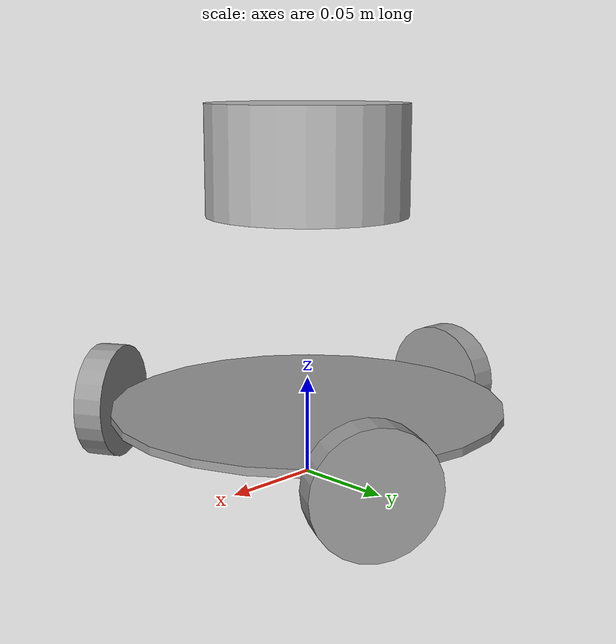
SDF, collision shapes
<?xml version='1.0'?>
<sdf version='1.6'>
  <model name='triton_lidar'>
    <link name='lidar'>
      <inertial>
        <pose frame=''>0 0 0.161 0 -0 0</pose>
        <inertia>
          <ixx>0.001</ixx>
          <ixy>0</ixy>
          <ixz>0</ixz>
          <iyy>0.001</iyy>
          <iyz>0</iyz>
          <izz>0.001</izz>
        </inertia>
        <mass>0.125</mass>
      </inertial>
      <sensor name='hls_lfcd_lds' type='ray'>
        <always_on>1</always_on>
        <visualize>0</visualize>
        <pose frame=''>0 0 0.171 0 -0 0</pose>
        <update_rate>1800</update_rate>
        <ray>
          <scan>
            <horizontal>
              <samples>360</samples>
              <resolution>1</resolution>
              <min_angle>0</min_angle>
              <max_angle>6.28</max_angle>
            </horizontal>
            <vertical>
              <samples>1</samples>
              <min_angle>0</min_angle>
              <max_angle>0</max_angle>
            </vertical>
          </scan>
          <range>
            <min>0.12</min>
            <max>3.5</max>
            <resolution>0.015</resolution>
          </range>
          <noise>
            <type>gaussian</type>
            <mean>0</mean>
            <stddev>0.01</stddev>
          </noise>
        </ray>
        <plugin name='gazebo_ros_head_hokuyo_controller' filename='libgazebo_ros_laser.so'>
          <topicName>/scan</topicName>
        </plugin>
      </sensor>
      <self_collide>0</self_collide>
      <enable_wind>0</enable_wind>
      <kinematic>0</kinematic>
      <pose frame=''>0 0 0 0 -0 0</pose>
      <visual name='lidar_sensor_visual'>
        <pose frame=''>0 0 0.161 0 -0 0</pose>
        <geometry>
          <cylinder>
            <radius>0.0508</radius>
            <length>0.055</length>
          </cylinder>
        </geometry>
        <material>
          <shader type='pixel'/>
          <emissive>0 0 0 1</emissive>
        </material>
        <transparency>0</transparency>
        <cast_shadows>1</cast_shadows>
      </visual>
      <collision name='lidar_sensor_collision'>
        <laser_retro>0</laser_retro>
        <max_contacts>10</max_contacts>
        <pose frame=''>0 0 0.161 0 -0 0</pose>
        <geometry>
          <cylinder>
            <radius>0.0508</radius>
            <length>0.055</length>
          </cylinder>
        </geometry>
        <surface>
          <friction>
            <ode>
              <mu>1</mu>
              <mu2>1</mu2>
              <fdir1>0 0 0</fdir1>
              <slip1>0</slip1>
              <slip2>0</slip2>
            </ode>
            <torsional>
              <coefficient>1</coefficient>
              <patch_radius>0</patch_radius>
              <surface_radius>0</surface_radius>
              <use_patch_radius>1</use_patch_radius>
              <ode>
                <slip>0</slip>
              </ode>
            </torsional>
          </friction>
          <bounce>
            <restitution_coefficient>0</restitution_coefficient>
            <threshold>1e+06</threshold>
          </bounce>
          <contact>
            <collide_without_contact>0</collide_without_contact>
            <collide_without_contact_bitmask>1</collide_without_contact_bitmask>
            <collide_bitmask>1</collide_bitmask>
            <ode>
              <soft_cfm>0</soft_cfm>
              <soft_erp>0.2</soft_erp>
              <kp>1e+13</kp>
              <kd>1</kd>
              <max_vel>0.01</max_vel>
              <min_depth>0</min_depth>
            </ode>
            <bullet>
              <split_impulse>1</split_impulse>
              <split_impulse_penetration_threshold>-0.01</split_impulse_penetration_threshold>
              <soft_cfm>0</soft_cfm>
              <soft_erp>0.2</soft_erp>
              <kp>1e+13</kp>
              <kd>1</kd>
            </bullet>
          </contact>
        </surface>
      </collision>
    </link>
    <link name='link_1'>
      <inertial>
        <mass>1</mass>
        <inertia>
          <ixx>0.145833</ixx>
          <ixy>0</ixy>
          <ixz>0</ixz>
          <iyy>0.145833</iyy>
          <iyz>0</iyz>
          <izz>0.125</izz>
        </inertia>
        <pose frame=''>0 0 0 0 -0 0</pose>
      </inertial>
      <pose frame=''>0 0 0.035 0 -0 0</pose>
      <gravity>1</gravity>
      <self_collide>0</self_collide>
      <kinematic>0</kinematic>
      <enable_wind>0</enable_wind>
      <visual name='visual'>
        <pose frame=''>0 0 0 0 -0 0</pose>
        <geometry>
          <mesh>
            <uri>model://triton/meshes/triton.dae</uri>
          </mesh>
        </geometry>
        <material>
          <lighting>1</lighting>
          <script>
            <uri>file://media/materials/scripts/gazebo.material</uri>
            <name>Gazebo/Grey</name>
          </script>
          <shader type='pixel'>
            <normal_map>__default__</normal_map>
          </shader>
          <ambient>0.4 0.4 0.4 1</ambient>
          <diffuse>1 1 1 1</diffuse>
          <specular>0.01 0.01 0.01 1</specular>
          <emissive>0 0 0 1</emissive>
        </material>
        <transparency>0</transparency>
        <cast_shadows>1</cast_shadows>
      </visual>
      <collision name='collision'>
        <laser_retro>0</laser_retro>
        <max_contacts>10</max_contacts>
        <pose frame=''>0 0 0 0 -0 0</pose>
        <geometry>
          <cylinder>
            <radius>0.1</radius>
            <length>0.004</length>
          </cylinder>
        </geometry>
        <surface>
          <friction>
            <ode>
              <mu>1</mu>
              <mu2>1</mu2>
              <fdir1>0 0 0</fdir1>
              <slip1>0</slip1>
              <slip2>0</slip2>
            </ode>
            <torsional>
              <coefficient>1</coefficient>
              <patch_radius>0</patch_radius>
              <surface_radius>0</surface_radius>
              <use_patch_radius>1</use_patch_radius>
              <ode>
                <slip>0</slip>
              </ode>
            </torsional>
          </friction>
          <bounce>
            <restitution_coefficient>0</restitution_coefficient>
            <threshold>1e+06</threshold>
          </bounce>
          <contact>
            <collide_without_contact>0</collide_without_contact>
            <collide_without_contact_bitmask>1</collide_without_contact_bitmask>
            <collide_bitmask>1</collide_bitmask>
            <ode>
              <soft_cfm>0</soft_cfm>
              <soft_erp>0.2</soft_erp>
              <kp>1e+13</kp>
              <kd>1</kd>
              <max_vel>0.01</max_vel>
              <min_depth>0</min_depth>
            </ode>
            <bullet>
              <split_impulse>1</split_impulse>
              <split_impulse_penetration_threshold>-0.01</split_impulse_penetration_threshold>
              <soft_cfm>0</soft_cfm>
              <soft_erp>0.2</soft_erp>
              <kp>1e+13</kp>
              <kd>1</kd>
            </bullet>
          </contact>
        </surface>
      </collision>
    </link>
    <link name='link_1_0_clone'>
      <inertial>
        <mass>1</mass>
        <inertia>
          <ixx>0.145833</ixx>
          <ixy>0</ixy>
          <ixz>0</ixz>
          <iyy>0.145833</iyy>
          <iyz>0</iyz>
          <izz>0.125</izz>
        </inertia>
        <pose frame=''>0 0 0 0 -0 0</pose>
      </inertial>
      <pose frame=''>0.055 0.095 0.03 2.09438 1.57 3e-06</pose>
      <gravity>1</gravity>
      <self_collide>0</self_collide>
      <kinematic>0</kinematic>
      <enable_wind>0</enable_wind>
      <visual name='visual_0'>
        <pose frame=''>0 0 0 0 -0 0</pose>
        <geometry>
          <cylinder>
            <radius>0.03</radius>
            <length>0.015</length>
          </cylinder>
        </geometry>
        <material>
          <lighting>1</lighting>
          <script>
            <uri>file://media/materials/scripts/gazebo.material</uri>
            <name>Gazebo/Grey</name>
          </script>
          <shader type='pixel'>
            <normal_map>__default__</normal_map>
          </shader>
          <ambient>0.3 0.3 0.3 1</ambient>
          <diffuse>0.7 0.7 0.7 1</diffuse>
          <specular>0.01 0.01 0.01 1</specular>
          <emissive>0 0 0 1</emissive>
        </material>
        <transparency>1</transparency>
        <cast_shadows>1</cast_shadows>
      </visual>
      <collision name='collision'>
        <laser_retro>0</laser_retro>
        <max_contacts>10</max_contacts>
        <pose frame=''>0 0 0 0 -0 0</pose>
        <geometry>
          <cylinder>
            <radius>0.03</radius>
            <length>0.015</length>
          </cylinder>
        </geometry>
        <surface>
          <friction>
            <ode>
              <mu>1</mu>
              <mu2>1</mu2>
              <fdir1>0 0 0</fdir1>
              <slip1>0</slip1>
              <slip2>0</slip2>
            </ode>
            <torsional>
              <coefficient>1</coefficient>
              <patch_radius>0</patch_radius>
              <surface_radius>0</surface_radius>
              <use_patch_radius>1</use_patch_radius>
              <ode>
                <slip>0</slip>
              </ode>
            </torsional>
          </friction>
          <bounce>
            <restitution_coefficient>0</restitution_coefficient>
            <threshold>1e+06</threshold>
          </bounce>
          <contact>
            <collide_without_contact>0</collide_without_contact>
            <collide_without_contact_bitmask>1</collide_without_contact_bitmask>
            <collide_bitmask>1</collide_bitmask>
            <ode>
              <soft_cfm>0</soft_cfm>
              <soft_erp>0.2</soft_erp>
              <kp>1e+13</kp>
              <kd>1</kd>
              <max_vel>0.01</max_vel>
              <min_depth>0</min_depth>
            </ode>
            <bullet>
              <split_impulse>1</split_impulse>
              <split_impulse_penetration_threshold>-0.01</split_impulse_penetration_threshold>
              <soft_cfm>0</soft_cfm>
              <soft_erp>0.2</soft_erp>
              <kp>1e+13</kp>
              <kd>1</kd>
            </bullet>
          </contact>
        </surface>
      </collision>
    </link>
    <link name='link_1_0_clone_clone'>
      <inertial>
        <mass>1</mass>
        <inertia>
          <ixx>0.145833</ixx>
          <ixy>0</ixy>
          <ixz>0</ixz>
          <iyy>0.145833</iyy>
          <iyz>0</iyz>
          <izz>0.125</izz>
        </inertia>
        <pose frame=''>0 0 0 0 -0 0</pose>
      </inertial>
      <pose frame=''>0.055 -0.095 0.03 -2.09427 1.57 9.2e-05</pose>
      <gravity>1</gravity>
      <self_collide>0</self_collide>
      <kinematic>0</kinematic>
      <enable_wind>0</enable_wind>
      <visual name='visual_0'>
        <pose frame=''>0 0 0 0 -0 0</pose>
        <geometry>
          <cylinder>
            <radius>0.03</radius>
            <length>0.015</length>
          </cylinder>
        </geometry>
        <material>
          <lighting>1</lighting>
          <script>
            <uri>file://media/materials/scripts/gazebo.material</uri>
            <name>Gazebo/Grey</name>
          </script>
          <shader type='pixel'>
            <normal_map>__default__</normal_map>
          </shader>
          <ambient>0.3 0.3 0.3 1</ambient>
          <diffuse>0.7 0.7 0.7 1</diffuse>
          <specular>0.01 0.01 0.01 1</specular>
          <emissive>0 0 0 1</emissive>
        </material>
        <transparency>1</transparency>
        <cast_shadows>1</cast_shadows>
      </visual>
      <collision name='collision'>
        <laser_retro>0</laser_retro>
        <max_contacts>10</max_contacts>
        <pose frame=''>0 0 0 0 -0 0</pose>
        <geometry>
          <cylinder>
            <radius>0.03</radius>
            <length>0.015</length>
          </cylinder>
        </geometry>
        <surface>
          <friction>
            <ode>
              <mu>1</mu>
              <mu2>1</mu2>
              <fdir1>0 0 0</fdir1>
              <slip1>0</slip1>
              <slip2>0</slip2>
            </ode>
            <torsional>
              <coefficient>1</coefficient>
              <patch_radius>0</patch_radius>
              <surface_radius>0</surface_radius>
              <use_patch_radius>1</use_patch_radius>
              <ode>
                <slip>0</slip>
              </ode>
            </torsional>
          </friction>
          <bounce>
            <restitution_coefficient>0</restitution_coefficient>
            <threshold>1e+06</threshold>
          </bounce>
          <contact>
            <collide_without_contact>0</collide_without_contact>
            <collide_without_contact_bitmask>1</collide_without_contact_bitmask>
            <collide_bitmask>1</collide_bitmask>
            <ode>
              <soft_cfm>0</soft_cfm>
              <soft_erp>0.2</soft_erp>
              <kp>1e+13</kp>
              <kd>1</kd>
              <max_vel>0.01</max_vel>
              <min_depth>0</min_depth>
            </ode>
            <bullet>
              <split_impulse>1</split_impulse>
              <split_impulse_penetration_threshold>-0.01</split_impulse_penetration_threshold>
              <soft_cfm>0</soft_cfm>
              <soft_erp>0.2</soft_erp>
              <kp>1e+13</kp>
              <kd>1</kd>
            </bullet>
          </contact>
        </surface>
      </collision>
    </link>
    <link name='link_1_0_clone_clone_0'>
      <inertial>
        <mass>1</mass>
        <inertia>
          <ixx>0.145833</ixx>
          <ixy>0</ixy>
          <ixz>0</ixz>
          <iyy>0.145833</iyy>
          <iyz>0</iyz>
          <izz>0.125</izz>
        </inertia>
        <pose frame=''>0 0 0 0 -0 0</pose>
      </inertial>
      <pose frame=''>-0.11 -0 0.03 7.9e-05 1.57 7.3e-05</pose>
      <gravity>1</gravity>
      <self_collide>0</self_collide>
      <kinematic>0</kinematic>
      <enable_wind>0</enable_wind>
      <visual name='visual_0'>
        <pose frame=''>0 0 0 0 -0 0</pose>
        <geometry>
          <cylinder>
            <radius>0.03</radius>
            <length>0.015</length>
          </cylinder>
        </geometry>
        <material>
          <lighting>1</lighting>
          <script>
            <uri>file://media/materials/scripts/gazebo.material</uri>
            <name>Gazebo/Grey</name>
          </script>
          <shader type='pixel'>
            <normal_map>__default__</normal_map>
          </shader>
          <ambient>0.3 0.3 0.3 1</ambient>
          <diffuse>0.7 0.7 0.7 1</diffuse>
          <specular>0.01 0.01 0.01 1</specular>
          <emissive>0 0 0 1</emissive>
        </material>
        <transparency>1</transparency>
        <cast_shadows>1</cast_shadows>
      </visual>
      <collision name='collision'>
        <laser_retro>0</laser_retro>
        <max_contacts>10</max_contacts>
        <pose frame=''>0 0 0 0 -0 0</pose>
        <geometry>
          <cylinder>
            <radius>0.03</radius>
            <length>0.015</length>
          </cylinder>
        </geometry>
        <surface>
          <friction>
            <ode>
              <mu>1</mu>
              <mu2>1</mu2>
              <fdir1>0 0 0</fdir1>
              <slip1>0</slip1>
              <slip2>0</slip2>
            </ode>
            <torsional>
              <coefficient>1</coefficient>
              <patch_radius>0</patch_radius>
              <surface_radius>0</surface_radius>
              <use_patch_radius>1</use_patch_radius>
              <ode>
                <slip>0</slip>
              </ode>
            </torsional>
          </friction>
          <bounce>
            <restitution_coefficient>0</restitution_coefficient>
            <threshold>1e+06</threshold>
          </bounce>
          <contact>
            <collide_without_contact>0</collide_without_contact>
            <collide_without_contact_bitmask>1</collide_without_contact_bitmask>
            <collide_bitmask>1</collide_bitmask>
            <ode>
              <soft_cfm>0</soft_cfm>
              <soft_erp>0.2</soft_erp>
              <kp>1e+13</kp>
              <kd>1</kd>
              <max_vel>0.01</max_vel>
              <min_depth>0</min_depth>
            </ode>
            <bullet>
              <split_impulse>1</split_impulse>
              <split_impulse_penetration_threshold>-0.01</split_impulse_penetration_threshold>
              <soft_cfm>0</soft_cfm>
              <soft_erp>0.2</soft_erp>
              <kp>1e+13</kp>
              <kd>1</kd>
            </bullet>
          </contact>
        </surface>
      </collision>
    </link>
    <joint name='link_1_JOINT_0' type='fixed'>
      <parent>link_1</parent>
      <child>lidar</child>
      <pose frame=''>0 0 0 0 -0 0</pose>
      <physics>
        <ode>
          <limit>
            <cfm>0</cfm>
            <erp>0.2</erp>
          </limit>
          <suspension>
            <cfm>0</cfm>
            <erp>0.2</erp>
          </suspension>
        </ode>
      </physics>
    </joint>
    <joint name='link_1_JOINT_1' type='revolute'>
      <parent>link_1</parent>
      <child>link_1_0_clone_clone_0</child>
      <pose frame=''>0 0 0 0 -0 0</pose>
      <axis>
        <xyz>0 0 1</xyz>
        <use_parent_model_frame>0</use_parent_model_frame>
        <limit>
          <lower>-1.79769e+308</lower>
          <upper>1.79769e+308</upper>
          <effort>-1</effort>
          <velocity>-1</velocity>
        </limit>
        <dynamics>
          <spring_reference>0</spring_reference>
          <spring_stiffness>0</spring_stiffness>
          <damping>0</damping>
          <friction>0</friction>
        </dynamics>
      </axis>
      <physics>
        <ode>
          <limit>
            <cfm>0</cfm>
            <erp>0.2</erp>
          </limit>
          <suspension>
            <cfm>0</cfm>
            <erp>0.2</erp>
          </suspension>
        </ode>
      </physics>
    </joint>
    <joint name='link_1_JOINT_2' type='revolute'>
      <parent>link_1</parent>
      <child>link_1_0_clone</child>
      <pose frame=''>0 0 0 0 -0 0</pose>
      <axis>
        <xyz>0 0 1</xyz>
        <use_parent_model_frame>0</use_parent_model_frame>
        <limit>
          <lower>-1.79769e+308</lower>
          <upper>1.79769e+308</upper>
          <effort>-1</effort>
          <velocity>-1</velocity>
        </limit>
        <dynamics>
          <spring_reference>0</spring_reference>
          <spring_stiffness>0</spring_stiffness>
          <damping>0</damping>
          <friction>0</friction>
        </dynamics>
      </axis>
      <physics>
        <ode>
          <limit>
            <cfm>0</cfm>
            <erp>0.2</erp>
          </limit>
          <suspension>
            <cfm>0</cfm>
            <erp>0.2</erp>
          </suspension>
        </ode>
      </physics>
    </joint>
    <joint name='link_1_JOINT_3' type='revolute'>
      <parent>link_1</parent>
      <child>link_1_0_clone_clone</child>
      <pose frame=''>0 0 0 0 -0 0</pose>
      <axis>
        <xyz>0 0 1</xyz>
        <use_parent_model_frame>0</use_parent_model_frame>
        <limit>
          <lower>-1.79769e+308</lower>
          <upper>1.79769e+308</upper>
          <effort>-1</effort>
          <velocity>-1</velocity>
        </limit>
        <dynamics>
          <spring_reference>0</spring_reference>
          <spring_stiffness>0</spring_stiffness>
          <damping>0</damping>
          <friction>0</friction>
        </dynamics>
      </axis>
      <physics>
        <ode>
          <limit>
            <cfm>0</cfm>
            <erp>0.2</erp>
          </limit>
          <suspension>
            <cfm>0</cfm>
            <erp>0.2</erp>
          </suspension>
        </ode>
      </physics>
    </joint>
    <static>0</static>
    <allow_auto_disable>1</allow_auto_disable>
    <plugin name='model_push' filename='libmodel_push.so'/>
  </model>
</sdf>
